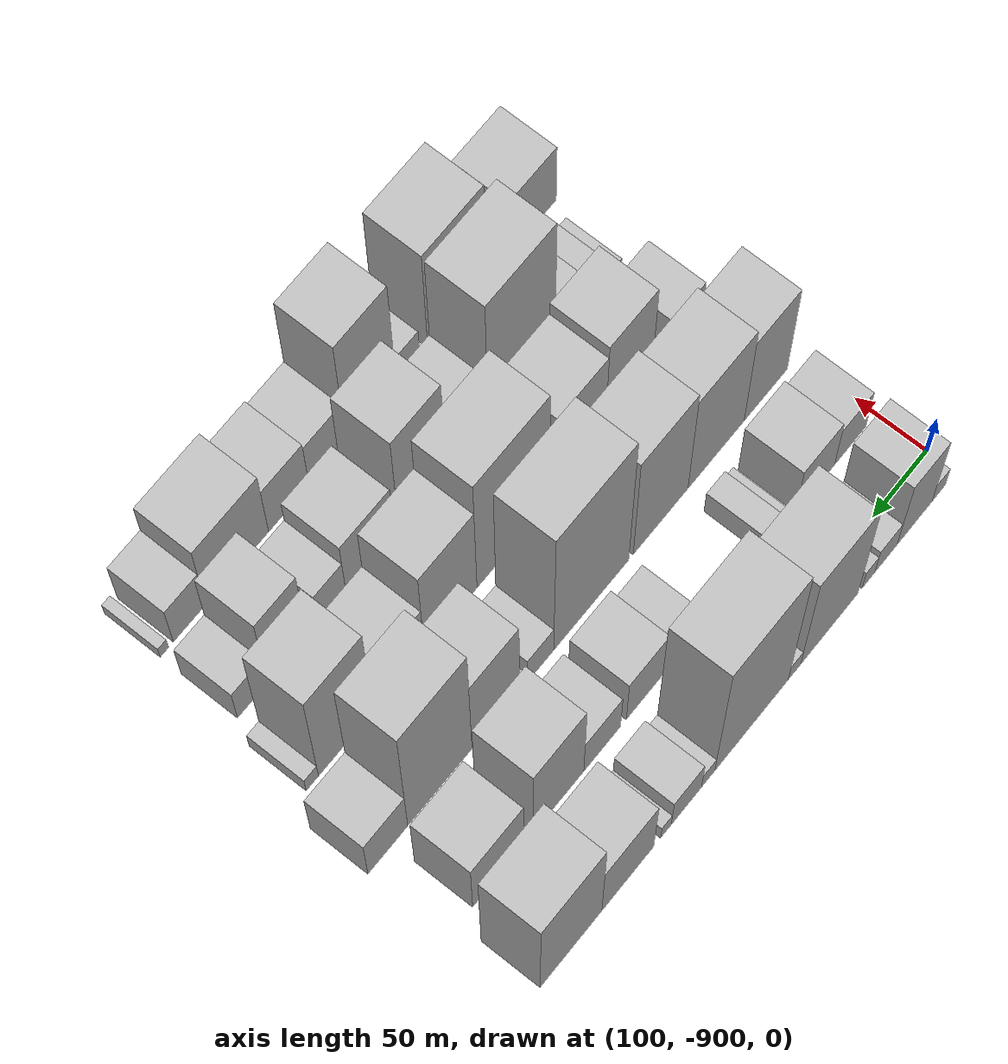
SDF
<sdf version="1.6">
 <world name="default">
  <model name="building_1">
   <static>1</static>
   <pose>100.0000 -883.7648 0 0.000000 0.000000 0.000000</pose>
   <link name="link">
    <pose>0 0 13.50 0 0 0</pose>
    <collision name="collision"><geometry><box><size>40.0000 12.4704 27.0000</size></box></geometry></collision>
    <visual name="visual">
     <cast_shadows>0</cast_shadows>
     <geometry><box><size>40.0000 12.4704 27.0000</size></box></geometry>
     <material>
      <script>
       <uri>model://HANNAS_wall/materials/scripts</uri>
       <uri>model://HANNAS_wall/materials/textures</uri>
       <name>vrc/HANNAS_wall</name>
      </script>
     </material>
    </visual>
   </link>
  </model>
  <model name="building_2">
   <static>1</static>
   <pose>100.0000 -861.3541 0 0.000000 0.000000 0.000000</pose>
   <link name="link">
    <pose>0 0 48.00 0 0 0</pose>
    <collision name="collision"><geometry><box><size>40.0000 32.3509 96.0000</size></box></geometry></collision>
    <visual name="visual">
     <cast_shadows>0</cast_shadows>
     <geometry><box><size>40.0000 32.3509 96.0000</size></box></geometry>
     <material>
      <script>
       <uri>model://HANNAS_wall/materials/scripts</uri>
       <uri>model://HANNAS_wall/materials/textures</uri>
       <name>vrc/HANNAS_wall</name>
      </script>
     </material>
    </visual>
   </link>
  </model>
  <model name="building_3">
   <static>1</static>
   <pose>100.0000 -835.0464 0 0.000000 0.000000 0.000000</pose>
   <link name="link">
    <pose>0 0 18.00 0 0 0</pose>
    <collision name="collision"><geometry><box><size>40.0000 20.2645 36.0000</size></box></geometry></collision>
    <visual name="visual">
     <cast_shadows>0</cast_shadows>
     <geometry><box><size>40.0000 20.2645 36.0000</size></box></geometry>
     <material>
      <script>
       <uri>model://HANNAS_wall/materials/scripts</uri>
       <uri>model://HANNAS_wall/materials/textures</uri>
       <name>vrc/HANNAS_wall</name>
      </script>
     </material>
    </visual>
   </link>
  </model>
  <model name="building_4">
   <static>1</static>
   <pose>100.0000 -819.1044 0 0.000000 0.000000 0.000000</pose>
   <link name="link">
    <pose>0 0 13.50 0 0 0</pose>
    <collision name="collision"><geometry><box><size>40.0000 11.6194 27.0000</size></box></geometry></collision>
    <visual name="visual">
     <cast_shadows>0</cast_shadows>
     <geometry><box><size>40.0000 11.6194 27.0000</size></box></geometry>
     <material>
      <script>
       <uri>model://HANNAS_wall/materials/scripts</uri>
       <uri>model://HANNAS_wall/materials/textures</uri>
       <name>vrc/HANNAS_wall</name>
      </script>
     </material>
    </visual>
   </link>
  </model>
  <model name="building_5">
   <static>1</static>
   <pose>100.0000 -783.4198 0 0.000000 0.000000 0.000000</pose>
   <link name="link">
    <pose>0 0 70.50 0 0 0</pose>
    <collision name="collision"><geometry><box><size>40.0000 51.7498 141.0000</size></box></geometry></collision>
    <visual name="visual">
     <cast_shadows>0</cast_shadows>
     <geometry><box><size>40.0000 51.7498 141.0000</size></box></geometry>
     <material>
      <script>
       <uri>model://HANNAS_wall/materials/scripts</uri>
       <uri>model://HANNAS_wall/materials/textures</uri>
       <name>vrc/HANNAS_wall</name>
      </script>
     </material>
    </visual>
   </link>
  </model>
  <model name="building_6">
   <static>1</static>
   <pose>100.0000 -752.0764 0 0.000000 0.000000 0.000000</pose>
   <link name="link">
    <pose>0 0 12.00 0 0 0</pose>
    <collision name="collision"><geometry><box><size>40.0000 10.9372 24.0000</size></box></geometry></collision>
    <visual name="visual">
     <cast_shadows>0</cast_shadows>
     <geometry><box><size>40.0000 10.9372 24.0000</size></box></geometry>
     <material>
      <script>
       <uri>model://HANNAS_wall/materials/scripts</uri>
       <uri>model://HANNAS_wall/materials/textures</uri>
       <name>vrc/HANNAS_wall</name>
      </script>
     </material>
    </visual>
   </link>
  </model>
  <model name="building_7">
   <static>1</static>
   <pose>100.0000 -713.8888 0 0.000000 0.000000 0.000000</pose>
   <link name="link">
    <pose>0 0 91.50 0 0 0</pose>
    <collision name="collision"><geometry><box><size>40.0000 65.4380 183.0000</size></box></geometry></collision>
    <visual name="visual">
     <cast_shadows>0</cast_shadows>
     <geometry><box><size>40.0000 65.4380 183.0000</size></box></geometry>
     <material>
      <script>
       <uri>model://HANNAS_wall/materials/scripts</uri>
       <uri>model://HANNAS_wall/materials/textures</uri>
       <name>vrc/HANNAS_wall</name>
      </script>
     </material>
    </visual>
   </link>
  </model>
  <model name="building_8">
   <static>1</static>
   <pose>100.0000 -675.3168 0 0.000000 0.000000 0.000000</pose>
   <link name="link">
    <pose>0 0 12.00 0 0 0</pose>
    <collision name="collision"><geometry><box><size>40.0000 11.7061 24.0000</size></box></geometry></collision>
    <visual name="visual">
     <cast_shadows>0</cast_shadows>
     <geometry><box><size>40.0000 11.7061 24.0000</size></box></geometry>
     <material>
      <script>
       <uri>model://HANNAS_wall/materials/scripts</uri>
       <uri>model://HANNAS_wall/materials/textures</uri>
       <name>vrc/HANNAS_wall</name>
      </script>
     </material>
    </visual>
   </link>
  </model>
  <model name="building_9">
   <static>1</static>
   <pose>100.0000 -656.2395 0 0.000000 0.000000 0.000000</pose>
   <link name="link">
    <pose>0 0 22.50 0 0 0</pose>
    <collision name="collision"><geometry><box><size>40.0000 26.4486 45.0000</size></box></geometry></collision>
    <visual name="visual">
     <cast_shadows>0</cast_shadows>
     <geometry><box><size>40.0000 26.4486 45.0000</size></box></geometry>
     <material>
      <script>
       <uri>model://HANNAS_wall/materials/scripts</uri>
       <uri>model://HANNAS_wall/materials/textures</uri>
       <name>vrc/HANNAS_wall</name>
      </script>
     </material>
    </visual>
   </link>
  </model>
  <model name="building_10">
   <static>1</static>
   <pose>100.0000 -638.4105 0 0.000000 0.000000 0.000000</pose>
   <link name="link">
    <pose>0 0 10.50 0 0 0</pose>
    <collision name="collision"><geometry><box><size>40.0000 9.2094 21.0000</size></box></geometry></collision>
    <visual name="visual">
     <cast_shadows>0</cast_shadows>
     <geometry><box><size>40.0000 9.2094 21.0000</size></box></geometry>
     <material>
      <script>
       <uri>model://HANNAS_wall/materials/scripts</uri>
       <uri>model://HANNAS_wall/materials/textures</uri>
       <name>vrc/HANNAS_wall</name>
      </script>
     </material>
    </visual>
   </link>
  </model>
  <model name="building_11">
   <static>1</static>
   <pose>100.0000 -605.3665 0 0.000000 0.000000 0.000000</pose>
   <link name="link">
    <pose>0 0 42.00 0 0 0</pose>
    <collision name="collision"><geometry><box><size>40.0000 44.8785 84.0000</size></box></geometry></collision>
    <visual name="visual">
     <cast_shadows>0</cast_shadows>
     <geometry><box><size>40.0000 44.8785 84.0000</size></box></geometry>
     <material>
      <script>
       <uri>model://HANNAS_wall/materials/scripts</uri>
       <uri>model://HANNAS_wall/materials/textures</uri>
       <name>vrc/HANNAS_wall</name>
      </script>
     </material>
    </visual>
   </link>
  </model>
  <model name="building_12">
   <static>1</static>
   <pose>100.0000 -556.5885 0 0.000000 0.000000 0.000000</pose>
   <link name="link">
    <pose>0 0 67.50 0 0 0</pose>
    <collision name="collision"><geometry><box><size>40.0000 52.6775 135.0000</size></box></geometry></collision>
    <visual name="visual">
     <cast_shadows>0</cast_shadows>
     <geometry><box><size>40.0000 52.6775 135.0000</size></box></geometry>
     <material>
      <script>
       <uri>model://HANNAS_wall/materials/scripts</uri>
       <uri>model://HANNAS_wall/materials/textures</uri>
       <name>vrc/HANNAS_wall</name>
      </script>
     </material>
    </visual>
   </link>
  </model>
  <model name="building_55">
   <static>1</static>
   <pose>155.0000 -875.5173 0 0.000000 0.000000 0.000000</pose>
   <link name="link">
    <pose>0 0 27.00 0 0 0</pose>
    <collision name="collision"><geometry><box><size>40.0000 28.9655 54.0000</size></box></geometry></collision>
    <visual name="visual">
     <cast_shadows>0</cast_shadows>
     <geometry><box><size>40.0000 28.9655 54.0000</size></box></geometry>
     <material>
      <script>
       <uri>model://HANNAS_wall/materials/scripts</uri>
       <uri>model://HANNAS_wall/materials/textures</uri>
       <name>vrc/HANNAS_wall</name>
      </script>
     </material>
    </visual>
   </link>
  </model>
  <model name="building_56">
   <static>1</static>
   <pose>155.0000 -843.3119 0 0.000000 0.000000 0.000000</pose>
   <link name="link">
    <pose>0 0 33.00 0 0 0</pose>
    <collision name="collision"><geometry><box><size>40.0000 35.4452 66.0000</size></box></geometry></collision>
    <visual name="visual">
     <cast_shadows>0</cast_shadows>
     <geometry><box><size>40.0000 35.4452 66.0000</size></box></geometry>
     <material>
      <script>
       <uri>model://HANNAS_wall/materials/scripts</uri>
       <uri>model://HANNAS_wall/materials/textures</uri>
       <name>vrc/HANNAS_wall</name>
      </script>
     </material>
    </visual>
   </link>
  </model>
  <model name="building_57">
   <static>1</static>
   <pose>155.0000 -815.4259 0 0.000000 0.000000 0.000000</pose>
   <link name="link">
    <pose>0 0 9.00 0 0 0</pose>
    <collision name="collision"><geometry><box><size>40.0000 8.3268 18.0000</size></box></geometry></collision>
    <visual name="visual">
     <cast_shadows>0</cast_shadows>
     <geometry><box><size>40.0000 8.3268 18.0000</size></box></geometry>
     <material>
      <script>
       <uri>model://HANNAS_wall/materials/scripts</uri>
       <uri>model://HANNAS_wall/materials/textures</uri>
       <name>vrc/HANNAS_wall</name>
      </script>
     </material>
    </visual>
   </link>
  </model>
  <model name="building_58">
   <static>1</static>
   <pose>155.0000 -802.9785 0 0.000000 0.000000 0.000000</pose>
   <link name="link">
    <pose>0 0 15.00 0 0 0</pose>
    <collision name="collision"><geometry><box><size>40.0000 16.5681 30.0000</size></box></geometry></collision>
    <visual name="visual">
     <cast_shadows>0</cast_shadows>
     <geometry><box><size>40.0000 16.5681 30.0000</size></box></geometry>
     <material>
      <script>
       <uri>model://HANNAS_wall/materials/scripts</uri>
       <uri>model://HANNAS_wall/materials/textures</uri>
       <name>vrc/HANNAS_wall</name>
      </script>
     </material>
    </visual>
   </link>
  </model>
  <model name="building_59">
   <static>1</static>
   <pose>155.0000 -725.8095 0 0.000000 0.000000 0.000000</pose>
   <link name="link">
    <pose>0 0 21.00 0 0 0</pose>
    <collision name="collision"><geometry><box><size>40.0000 23.2567 42.0000</size></box></geometry></collision>
    <visual name="visual">
     <cast_shadows>0</cast_shadows>
     <geometry><box><size>40.0000 23.2567 42.0000</size></box></geometry>
     <material>
      <script>
       <uri>model://HANNAS_wall/materials/scripts</uri>
       <uri>model://HANNAS_wall/materials/textures</uri>
       <name>vrc/HANNAS_wall</name>
      </script>
     </material>
    </visual>
   </link>
  </model>
  <model name="building_60">
   <static>1</static>
   <pose>155.0000 -691.6443 0 0.000000 0.000000 0.000000</pose>
   <link name="link">
    <pose>0 0 33.00 0 0 0</pose>
    <collision name="collision"><geometry><box><size>40.0000 35.0736 66.0000</size></box></geometry></collision>
    <visual name="visual">
     <cast_shadows>0</cast_shadows>
     <geometry><box><size>40.0000 35.0736 66.0000</size></box></geometry>
     <material>
      <script>
       <uri>model://HANNAS_wall/materials/scripts</uri>
       <uri>model://HANNAS_wall/materials/textures</uri>
       <name>vrc/HANNAS_wall</name>
      </script>
     </material>
    </visual>
   </link>
  </model>
  <model name="building_61">
   <static>1</static>
   <pose>155.0000 -653.0417 0 0.000000 0.000000 0.000000</pose>
   <link name="link">
    <pose>0 0 27.00 0 0 0</pose>
    <collision name="collision"><geometry><box><size>40.0000 32.1316 54.0000</size></box></geometry></collision>
    <visual name="visual">
     <cast_shadows>0</cast_shadows>
     <geometry><box><size>40.0000 32.1316 54.0000</size></box></geometry>
     <material>
      <script>
       <uri>model://HANNAS_wall/materials/scripts</uri>
       <uri>model://HANNAS_wall/materials/textures</uri>
       <name>vrc/HANNAS_wall</name>
      </script>
     </material>
    </visual>
   </link>
  </model>
  <model name="building_62">
   <static>1</static>
   <pose>155.0000 -615.1147 0 0.000000 0.000000 0.000000</pose>
   <link name="link">
    <pose>0 0 58.50 0 0 0</pose>
    <collision name="collision"><geometry><box><size>40.0000 43.7225 117.0000</size></box></geometry></collision>
    <visual name="visual">
     <cast_shadows>0</cast_shadows>
     <geometry><box><size>40.0000 43.7225 117.0000</size></box></geometry>
     <material>
      <script>
       <uri>model://HANNAS_wall/materials/scripts</uri>
       <uri>model://HANNAS_wall/materials/textures</uri>
       <name>vrc/HANNAS_wall</name>
      </script>
     </material>
    </visual>
   </link>
  </model>
  <model name="building_63">
   <static>1</static>
   <pose>155.0000 -563.4851 0 0.000000 0.000000 0.000000</pose>
   <link name="link">
    <pose>0 0 40.50 0 0 0</pose>
    <collision name="collision"><geometry><box><size>40.0000 43.5367 81.0000</size></box></geometry></collision>
    <visual name="visual">
     <cast_shadows>0</cast_shadows>
     <geometry><box><size>40.0000 43.5367 81.0000</size></box></geometry>
     <material>
      <script>
       <uri>model://HANNAS_wall/materials/scripts</uri>
       <uri>model://HANNAS_wall/materials/textures</uri>
       <name>vrc/HANNAS_wall</name>
      </script>
     </material>
    </visual>
   </link>
  </model>
  <model name="building_104">
   <static>1</static>
   <pose>210.0000 -870.1935 0 0.000000 0.000000 0.000000</pose>
   <link name="link">
    <pose>0 0 58.50 0 0 0</pose>
    <collision name="collision"><geometry><box><size>40.0000 39.6129 117.0000</size></box></geometry></collision>
    <visual name="visual">
     <cast_shadows>0</cast_shadows>
     <geometry><box><size>40.0000 39.6129 117.0000</size></box></geometry>
     <material>
      <script>
       <uri>model://HANNAS_wall/materials/scripts</uri>
       <uri>model://HANNAS_wall/materials/textures</uri>
       <name>vrc/HANNAS_wall</name>
      </script>
     </material>
    </visual>
   </link>
  </model>
  <model name="building_105">
   <static>1</static>
   <pose>210.0000 -824.9096 0 0.000000 0.000000 0.000000</pose>
   <link name="link">
    <pose>0 0 67.50 0 0 0</pose>
    <collision name="collision"><geometry><box><size>40.0000 50.9550 135.0000</size></box></geometry></collision>
    <visual name="visual">
     <cast_shadows>0</cast_shadows>
     <geometry><box><size>40.0000 50.9550 135.0000</size></box></geometry>
     <material>
      <script>
       <uri>model://HANNAS_wall/materials/scripts</uri>
       <uri>model://HANNAS_wall/materials/textures</uri>
       <name>vrc/HANNAS_wall</name>
      </script>
     </material>
    </visual>
   </link>
  </model>
  <model name="building_106">
   <static>1</static>
   <pose>210.0000 -774.9024 0 0.000000 0.000000 0.000000</pose>
   <link name="link">
    <pose>0 0 73.50 0 0 0</pose>
    <collision name="collision"><geometry><box><size>40.0000 49.0593 147.0000</size></box></geometry></collision>
    <visual name="visual">
     <cast_shadows>0</cast_shadows>
     <geometry><box><size>40.0000 49.0593 147.0000</size></box></geometry>
     <material>
      <script>
       <uri>model://HANNAS_wall/materials/scripts</uri>
       <uri>model://HANNAS_wall/materials/textures</uri>
       <name>vrc/HANNAS_wall</name>
      </script>
     </material>
    </visual>
   </link>
  </model>
  <model name="building_107">
   <static>1</static>
   <pose>210.0000 -713.2337 0 0.000000 0.000000 0.000000</pose>
   <link name="link">
    <pose>0 0 94.50 0 0 0</pose>
    <collision name="collision"><geometry><box><size>40.0000 66.2782 189.0000</size></box></geometry></collision>
    <visual name="visual">
     <cast_shadows>0</cast_shadows>
     <geometry><box><size>40.0000 66.2782 189.0000</size></box></geometry>
     <material>
      <script>
       <uri>model://HANNAS_wall/materials/scripts</uri>
       <uri>model://HANNAS_wall/materials/textures</uri>
       <name>vrc/HANNAS_wall</name>
      </script>
     </material>
    </visual>
   </link>
  </model>
  <model name="building_108">
   <static>1</static>
   <pose>210.0000 -668.7282 0 0.000000 0.000000 0.000000</pose>
   <link name="link">
    <pose>0 0 19.50 0 0 0</pose>
    <collision name="collision"><geometry><box><size>40.0000 22.7329 39.0000</size></box></geometry></collision>
    <visual name="visual">
     <cast_shadows>0</cast_shadows>
     <geometry><box><size>40.0000 22.7329 39.0000</size></box></geometry>
     <material>
      <script>
       <uri>model://HANNAS_wall/materials/scripts</uri>
       <uri>model://HANNAS_wall/materials/textures</uri>
       <name>vrc/HANNAS_wall</name>
      </script>
     </material>
    </visual>
   </link>
  </model>
  <model name="building_109">
   <static>1</static>
   <pose>210.0000 -653.8431 0 0.000000 0.000000 0.000000</pose>
   <link name="link">
    <pose>0 0 7.50 0 0 0</pose>
    <collision name="collision"><geometry><box><size>40.0000 7.0373 15.0000</size></box></geometry></collision>
    <visual name="visual">
     <cast_shadows>0</cast_shadows>
     <geometry><box><size>40.0000 7.0373 15.0000</size></box></geometry>
     <material>
      <script>
       <uri>model://HANNAS_wall/materials/scripts</uri>
       <uri>model://HANNAS_wall/materials/textures</uri>
       <name>vrc/HANNAS_wall</name>
      </script>
     </material>
    </visual>
   </link>
  </model>
  <model name="building_110">
   <static>1</static>
   <pose>210.0000 -629.8048 0 0.000000 0.000000 0.000000</pose>
   <link name="link">
    <pose>0 0 58.50 0 0 0</pose>
    <collision name="collision"><geometry><box><size>40.0000 41.0392 117.0000</size></box></geometry></collision>
    <visual name="visual">
     <cast_shadows>0</cast_shadows>
     <geometry><box><size>40.0000 41.0392 117.0000</size></box></geometry>
     <material>
      <script>
       <uri>model://HANNAS_wall/materials/scripts</uri>
       <uri>model://HANNAS_wall/materials/textures</uri>
       <name>vrc/HANNAS_wall</name>
      </script>
     </material>
    </visual>
   </link>
  </model>
  <model name="building_111">
   <static>1</static>
   <pose>210.0000 -581.8648 0 0.000000 0.000000 0.000000</pose>
   <link name="link">
    <pose>0 0 87.00 0 0 0</pose>
    <collision name="collision"><geometry><box><size>40.0000 54.8408 174.0000</size></box></geometry></collision>
    <visual name="visual">
     <cast_shadows>0</cast_shadows>
     <geometry><box><size>40.0000 54.8408 174.0000</size></box></geometry>
     <material>
      <script>
       <uri>model://HANNAS_wall/materials/scripts</uri>
       <uri>model://HANNAS_wall/materials/textures</uri>
       <name>vrc/HANNAS_wall</name>
      </script>
     </material>
    </visual>
   </link>
  </model>
  <model name="building_112">
   <static>1</static>
   <pose>210.0000 -537.6299 0 0.000000 0.000000 0.000000</pose>
   <link name="link">
    <pose>0 0 30.00 0 0 0</pose>
    <collision name="collision"><geometry><box><size>40.0000 33.6290 60.0000</size></box></geometry></collision>
    <visual name="visual">
     <cast_shadows>0</cast_shadows>
     <geometry><box><size>40.0000 33.6290 60.0000</size></box></geometry>
     <material>
      <script>
       <uri>model://HANNAS_wall/materials/scripts</uri>
       <uri>model://HANNAS_wall/materials/textures</uri>
       <name>vrc/HANNAS_wall</name>
      </script>
     </material>
    </visual>
   </link>
  </model>
  <model name="building_156">
   <static>1</static>
   <pose>265.0000 -868.2908 0 0.000000 0.000000 0.000000</pose>
   <link name="link">
    <pose>0 0 28.50 0 0 0</pose>
    <collision name="collision"><geometry><box><size>40.0000 29.4184 57.0000</size></box></geometry></collision>
    <visual name="visual">
     <cast_shadows>0</cast_shadows>
     <geometry><box><size>40.0000 29.4184 57.0000</size></box></geometry>
     <material>
      <script>
       <uri>model://HANNAS_wall/materials/scripts</uri>
       <uri>model://HANNAS_wall/materials/textures</uri>
       <name>vrc/HANNAS_wall</name>
      </script>
     </material>
    </visual>
   </link>
  </model>
  <model name="building_157">
   <static>1</static>
   <pose>265.0000 -845.6279 0 0.000000 0.000000 0.000000</pose>
   <link name="link">
    <pose>0 0 9.00 0 0 0</pose>
    <collision name="collision"><geometry><box><size>40.0000 7.9073 18.0000</size></box></geometry></collision>
    <visual name="visual">
     <cast_shadows>0</cast_shadows>
     <geometry><box><size>40.0000 7.9073 18.0000</size></box></geometry>
     <material>
      <script>
       <uri>model://HANNAS_wall/materials/scripts</uri>
       <uri>model://HANNAS_wall/materials/textures</uri>
       <name>vrc/HANNAS_wall</name>
      </script>
     </material>
    </visual>
   </link>
  </model>
  <model name="building_158">
   <static>1</static>
   <pose>265.0000 -815.8304 0 0.000000 0.000000 0.000000</pose>
   <link name="link">
    <pose>0 0 67.50 0 0 0</pose>
    <collision name="collision"><geometry><box><size>40.0000 41.6878 135.0000</size></box></geometry></collision>
    <visual name="visual">
     <cast_shadows>0</cast_shadows>
     <geometry><box><size>40.0000 41.6878 135.0000</size></box></geometry>
     <material>
      <script>
       <uri>model://HANNAS_wall/materials/scripts</uri>
       <uri>model://HANNAS_wall/materials/textures</uri>
       <name>vrc/HANNAS_wall</name>
      </script>
     </material>
    </visual>
   </link>
  </model>
  <model name="building_159">
   <static>1</static>
   <pose>265.0000 -773.1624 0 0.000000 0.000000 0.000000</pose>
   <link name="link">
    <pose>0 0 60.00 0 0 0</pose>
    <collision name="collision"><geometry><box><size>40.0000 43.6480 120.0000</size></box></geometry></collision>
    <visual name="visual">
     <cast_shadows>0</cast_shadows>
     <geometry><box><size>40.0000 43.6480 120.0000</size></box></geometry>
     <material>
      <script>
       <uri>model://HANNAS_wall/materials/scripts</uri>
       <uri>model://HANNAS_wall/materials/textures</uri>
       <name>vrc/HANNAS_wall</name>
      </script>
     </material>
    </visual>
   </link>
  </model>
  <model name="building_160">
   <static>1</static>
   <pose>265.0000 -748.2103 0 0.000000 0.000000 0.000000</pose>
   <link name="link">
    <pose>0 0 7.50 0 0 0</pose>
    <collision name="collision"><geometry><box><size>40.0000 6.2563 15.0000</size></box></geometry></collision>
    <visual name="visual">
     <cast_shadows>0</cast_shadows>
     <geometry><box><size>40.0000 6.2563 15.0000</size></box></geometry>
     <material>
      <script>
       <uri>model://HANNAS_wall/materials/scripts</uri>
       <uri>model://HANNAS_wall/materials/textures</uri>
       <name>vrc/HANNAS_wall</name>
      </script>
     </material>
    </visual>
   </link>
  </model>
  <model name="building_161">
   <static>1</static>
   <pose>265.0000 -713.4798 0 0.000000 0.000000 0.000000</pose>
   <link name="link">
    <pose>0 0 84.00 0 0 0</pose>
    <collision name="collision"><geometry><box><size>40.0000 63.2047 168.0000</size></box></geometry></collision>
    <visual name="visual">
     <cast_shadows>0</cast_shadows>
     <geometry><box><size>40.0000 63.2047 168.0000</size></box></geometry>
     <material>
      <script>
       <uri>model://HANNAS_wall/materials/scripts</uri>
       <uri>model://HANNAS_wall/materials/textures</uri>
       <name>vrc/HANNAS_wall</name>
      </script>
     </material>
    </visual>
   </link>
  </model>
  <model name="building_162">
   <static>1</static>
   <pose>265.0000 -658.9999 0 0.000000 0.000000 0.000000</pose>
   <link name="link">
    <pose>0 0 63.00 0 0 0</pose>
    <collision name="collision"><geometry><box><size>40.0000 45.7551 126.0000</size></box></geometry></collision>
    <visual name="visual">
     <cast_shadows>0</cast_shadows>
     <geometry><box><size>40.0000 45.7551 126.0000</size></box></geometry>
     <material>
      <script>
       <uri>model://HANNAS_wall/materials/scripts</uri>
       <uri>model://HANNAS_wall/materials/textures</uri>
       <name>vrc/HANNAS_wall</name>
      </script>
     </material>
    </visual>
   </link>
  </model>
  <model name="building_163">
   <static>1</static>
   <pose>265.0000 -615.6955 0 0.000000 0.000000 0.000000</pose>
   <link name="link">
    <pose>0 0 36.00 0 0 0</pose>
    <collision name="collision"><geometry><box><size>40.0000 40.8537 72.0000</size></box></geometry></collision>
    <visual name="visual">
     <cast_shadows>0</cast_shadows>
     <geometry><box><size>40.0000 40.8537 72.0000</size></box></geometry>
     <material>
      <script>
       <uri>model://HANNAS_wall/materials/scripts</uri>
       <uri>model://HANNAS_wall/materials/textures</uri>
       <name>vrc/HANNAS_wall</name>
      </script>
     </material>
    </visual>
   </link>
  </model>
  <model name="building_164">
   <static>1</static>
   <pose>265.0000 -569.0585 0 0.000000 0.000000 0.000000</pose>
   <link name="link">
    <pose>0 0 70.50 0 0 0</pose>
    <collision name="collision"><geometry><box><size>40.0000 46.4203 141.0000</size></box></geometry></collision>
    <visual name="visual">
     <cast_shadows>0</cast_shadows>
     <geometry><box><size>40.0000 46.4203 141.0000</size></box></geometry>
     <material>
      <script>
       <uri>model://HANNAS_wall/materials/scripts</uri>
       <uri>model://HANNAS_wall/materials/textures</uri>
       <name>vrc/HANNAS_wall</name>
      </script>
     </material>
    </visual>
   </link>
  </model>
  <model name="building_165">
   <static>1</static>
   <pose>265.0000 -540.6428 0 0.000000 0.000000 0.000000</pose>
   <link name="link">
    <pose>0 0 10.50 0 0 0</pose>
    <collision name="collision"><geometry><box><size>40.0000 10.4110 21.0000</size></box></geometry></collision>
    <visual name="visual">
     <cast_shadows>0</cast_shadows>
     <geometry><box><size>40.0000 10.4110 21.0000</size></box></geometry>
     <material>
      <script>
       <uri>model://HANNAS_wall/materials/scripts</uri>
       <uri>model://HANNAS_wall/materials/textures</uri>
       <name>vrc/HANNAS_wall</name>
      </script>
     </material>
    </visual>
   </link>
  </model>
  <model name="building_206">
   <static>1</static>
   <pose>320.0000 -876.3824 0 0.000000 0.000000 0.000000</pose>
   <link name="link">
    <pose>0 0 7.50 0 0 0</pose>
    <collision name="collision"><geometry><box><size>40.0000 7.2353 15.0000</size></box></geometry></collision>
    <visual name="visual">
     <cast_shadows>0</cast_shadows>
     <geometry><box><size>40.0000 7.2353 15.0000</size></box></geometry>
     <material>
      <script>
       <uri>model://HANNAS_wall/materials/scripts</uri>
       <uri>model://HANNAS_wall/materials/textures</uri>
       <name>vrc/HANNAS_wall</name>
      </script>
     </material>
    </visual>
   </link>
  </model>
  <model name="building_207">
   <static>1</static>
   <pose>320.0000 -857.7135 0 0.000000 0.000000 0.000000</pose>
   <link name="link">
    <pose>0 0 18.00 0 0 0</pose>
    <collision name="collision"><geometry><box><size>40.0000 18.1024 36.0000</size></box></geometry></collision>
    <visual name="visual">
     <cast_shadows>0</cast_shadows>
     <geometry><box><size>40.0000 18.1024 36.0000</size></box></geometry>
     <material>
      <script>
       <uri>model://HANNAS_wall/materials/scripts</uri>
       <uri>model://HANNAS_wall/materials/textures</uri>
       <name>vrc/HANNAS_wall</name>
      </script>
     </material>
    </visual>
   </link>
  </model>
  <model name="building_208">
   <static>1</static>
   <pose>320.0000 -836.5728 0 0.000000 0.000000 0.000000</pose>
   <link name="link">
    <pose>0 0 22.50 0 0 0</pose>
    <collision name="collision"><geometry><box><size>40.0000 24.1791 45.0000</size></box></geometry></collision>
    <visual name="visual">
     <cast_shadows>0</cast_shadows>
     <geometry><box><size>40.0000 24.1791 45.0000</size></box></geometry>
     <material>
      <script>
       <uri>model://HANNAS_wall/materials/scripts</uri>
       <uri>model://HANNAS_wall/materials/textures</uri>
       <name>vrc/HANNAS_wall</name>
      </script>
     </material>
    </visual>
   </link>
  </model>
  <model name="building_209">
   <static>1</static>
   <pose>320.0000 -789.8288 0 0.000000 0.000000 0.000000</pose>
   <link name="link">
    <pose>0 0 87.00 0 0 0</pose>
    <collision name="collision"><geometry><box><size>40.0000 59.3088 174.0000</size></box></geometry></collision>
    <visual name="visual">
     <cast_shadows>0</cast_shadows>
     <geometry><box><size>40.0000 59.3088 174.0000</size></box></geometry>
     <material>
      <script>
       <uri>model://HANNAS_wall/materials/scripts</uri>
       <uri>model://HANNAS_wall/materials/textures</uri>
       <name>vrc/HANNAS_wall</name>
      </script>
     </material>
    </visual>
   </link>
  </model>
  <model name="building_210">
   <static>1</static>
   <pose>320.0000 -741.5971 0 0.000000 0.000000 0.000000</pose>
   <link name="link">
    <pose>0 0 36.00 0 0 0</pose>
    <collision name="collision"><geometry><box><size>40.0000 37.1547 72.0000</size></box></geometry></collision>
    <visual name="visual">
     <cast_shadows>0</cast_shadows>
     <geometry><box><size>40.0000 37.1547 72.0000</size></box></geometry>
     <material>
      <script>
       <uri>model://HANNAS_wall/materials/scripts</uri>
       <uri>model://HANNAS_wall/materials/textures</uri>
       <name>vrc/HANNAS_wall</name>
      </script>
     </material>
    </visual>
   </link>
  </model>
  <model name="building_211">
   <static>1</static>
   <pose>320.0000 -702.3172 0 0.000000 0.000000 0.000000</pose>
   <link name="link">
    <pose>0 0 69.00 0 0 0</pose>
    <collision name="collision"><geometry><box><size>40.0000 41.4053 138.0000</size></box></geometry></collision>
    <visual name="visual">
     <cast_shadows>0</cast_shadows>
     <geometry><box><size>40.0000 41.4053 138.0000</size></box></geometry>
     <material>
      <script>
       <uri>model://HANNAS_wall/materials/scripts</uri>
       <uri>model://HANNAS_wall/materials/textures</uri>
       <name>vrc/HANNAS_wall</name>
      </script>
     </material>
    </visual>
   </link>
  </model>
  <model name="building_212">
   <static>1</static>
   <pose>320.0000 -656.6233 0 0.000000 0.000000 0.000000</pose>
   <link name="link">
    <pose>0 0 37.50 0 0 0</pose>
    <collision name="collision"><geometry><box><size>40.0000 41.9824 75.0000</size></box></geometry></collision>
    <visual name="visual">
     <cast_shadows>0</cast_shadows>
     <geometry><box><size>40.0000 41.9824 75.0000</size></box></geometry>
     <material>
      <script>
       <uri>model://HANNAS_wall/materials/scripts</uri>
       <uri>model://HANNAS_wall/materials/textures</uri>
       <name>vrc/HANNAS_wall</name>
      </script>
     </material>
    </visual>
   </link>
  </model>
  <model name="building_213">
   <static>1</static>
   <pose>320.0000 -623.6018 0 0.000000 0.000000 0.000000</pose>
   <link name="link">
    <pose>0 0 24.00 0 0 0</pose>
    <collision name="collision"><geometry><box><size>40.0000 24.0606 48.0000</size></box></geometry></collision>
    <visual name="visual">
     <cast_shadows>0</cast_shadows>
     <geometry><box><size>40.0000 24.0606 48.0000</size></box></geometry>
     <material>
      <script>
       <uri>model://HANNAS_wall/materials/scripts</uri>
       <uri>model://HANNAS_wall/materials/textures</uri>
       <name>vrc/HANNAS_wall</name>
      </script>
     </material>
    </visual>
   </link>
  </model>
  <model name="building_214">
   <static>1</static>
   <pose>320.0000 -585.6541 0 0.000000 0.000000 0.000000</pose>
   <link name="link">
    <pose>0 0 52.50 0 0 0</pose>
    <collision name="collision"><geometry><box><size>40.0000 33.8347 105.0000</size></box></geometry></collision>
    <visual name="visual">
     <cast_shadows>0</cast_shadows>
     <geometry><box><size>40.0000 33.8347 105.0000</size></box></geometry>
     <material>
      <script>
       <uri>model://HANNAS_wall/materials/scripts</uri>
       <uri>model://HANNAS_wall/materials/textures</uri>
       <name>vrc/HANNAS_wall</name>
      </script>
     </material>
    </visual>
   </link>
  </model>
  <model name="building_215">
   <static>1</static>
   <pose>320.0000 -556.0959 0 0.000000 0.000000 0.000000</pose>
   <link name="link">
    <pose>0 0 22.50 0 0 0</pose>
    <collision name="collision"><geometry><box><size>40.0000 25.2817 45.0000</size></box></geometry></collision>
    <visual name="visual">
     <cast_shadows>0</cast_shadows>
     <geometry><box><size>40.0000 25.2817 45.0000</size></box></geometry>
     <material>
      <script>
       <uri>model://HANNAS_wall/materials/scripts</uri>
       <uri>model://HANNAS_wall/materials/textures</uri>
       <name>vrc/HANNAS_wall</name>
      </script>
     </material>
    </visual>
   </link>
  </model>
  <model name="building_259">
   <static>1</static>
   <pose>375.0000 -868.5792 0 0.000000 0.000000 0.000000</pose>
   <link name="link">
    <pose>0 0 36.00 0 0 0</pose>
    <collision name="collision"><geometry><box><size>40.0000 42.8416 72.0000</size></box></geometry></collision>
    <visual name="visual">
     <cast_shadows>0</cast_shadows>
     <geometry><box><size>40.0000 42.8416 72.0000</size></box></geometry>
     <material>
      <script>
       <uri>model://HANNAS_wall/materials/scripts</uri>
       <uri>model://HANNAS_wall/materials/textures</uri>
       <name>vrc/HANNAS_wall</name>
      </script>
     </material>
    </visual>
   </link>
  </model>
  <model name="building_260">
   <static>1</static>
   <pose>375.0000 -843.2786 0 0.000000 0.000000 0.000000</pose>
   <link name="link">
    <pose>0 0 9.00 0 0 0</pose>
    <collision name="collision"><geometry><box><size>40.0000 7.7595 18.0000</size></box></geometry></collision>
    <visual name="visual">
     <cast_shadows>0</cast_shadows>
     <geometry><box><size>40.0000 7.7595 18.0000</size></box></geometry>
     <material>
      <script>
       <uri>model://HANNAS_wall/materials/scripts</uri>
       <uri>model://HANNAS_wall/materials/textures</uri>
       <name>vrc/HANNAS_wall</name>
      </script>
     </material>
    </visual>
   </link>
  </model>
  <model name="building_261">
   <static>1</static>
   <pose>375.0000 -834.5866 0 0.000000 0.000000 0.000000</pose>
   <link name="link">
    <pose>0 0 10.50 0 0 0</pose>
    <collision name="collision"><geometry><box><size>40.0000 9.6244 21.0000</size></box></geometry></collision>
    <visual name="visual">
     <cast_shadows>0</cast_shadows>
     <geometry><box><size>40.0000 9.6244 21.0000</size></box></geometry>
     <material>
      <script>
       <uri>model://HANNAS_wall/materials/scripts</uri>
       <uri>model://HANNAS_wall/materials/textures</uri>
       <name>vrc/HANNAS_wall</name>
      </script>
     </material>
    </visual>
   </link>
  </model>
  <model name="building_262">
   <static>1</static>
   <pose>375.0000 -800.6245 0 0.000000 0.000000 0.000000</pose>
   <link name="link">
    <pose>0 0 66.00 0 0 0</pose>
    <collision name="collision"><geometry><box><size>40.0000 52.3000 132.0000</size></box></geometry></collision>
    <visual name="visual">
     <cast_shadows>0</cast_shadows>
     <geometry><box><size>40.0000 52.3000 132.0000</size></box></geometry>
     <material>
      <script>
       <uri>model://HANNAS_wall/materials/scripts</uri>
       <uri>model://HANNAS_wall/materials/textures</uri>
       <name>vrc/HANNAS_wall</name>
      </script>
     </material>
    </visual>
   </link>
  </model>
  <model name="building_263">
   <static>1</static>
   <pose>375.0000 -757.0307 0 0.000000 0.000000 0.000000</pose>
   <link name="link">
    <pose>0 0 19.50 0 0 0</pose>
    <collision name="collision"><geometry><box><size>40.0000 20.8876 39.0000</size></box></geometry></collision>
    <visual name="visual">
     <cast_shadows>0</cast_shadows>
     <geometry><box><size>40.0000 20.8876 39.0000</size></box></geometry>
     <material>
      <script>
       <uri>model://HANNAS_wall/materials/scripts</uri>
       <uri>model://HANNAS_wall/materials/textures</uri>
       <name>vrc/HANNAS_wall</name>
      </script>
     </material>
    </visual>
   </link>
  </model>
  <model name="building_264">
   <static>1</static>
   <pose>375.0000 -724.5255 0 0.000000 0.000000 0.000000</pose>
   <link name="link">
    <pose>0 0 72.00 0 0 0</pose>
    <collision name="collision"><geometry><box><size>40.0000 44.1227 144.0000</size></box></geometry></collision>
    <visual name="visual">
     <cast_shadows>0</cast_shadows>
     <geometry><box><size>40.0000 44.1227 144.0000</size></box></geometry>
     <material>
      <script>
       <uri>model://HANNAS_wall/materials/scripts</uri>
       <uri>model://HANNAS_wall/materials/textures</uri>
       <name>vrc/HANNAS_wall</name>
      </script>
     </material>
    </visual>
   </link>
  </model>
  <model name="building_265">
   <static>1</static>
   <pose>375.0000 -686.3757 0 0.000000 0.000000 0.000000</pose>
   <link name="link">
    <pose>0 0 30.00 0 0 0</pose>
    <collision name="collision"><geometry><box><size>40.0000 32.1769 60.0000</size></box></geometry></collision>
    <visual name="visual">
     <cast_shadows>0</cast_shadows>
     <geometry><box><size>40.0000 32.1769 60.0000</size></box></geometry>
     <material>
      <script>
       <uri>model://HANNAS_wall/materials/scripts</uri>
       <uri>model://HANNAS_wall/materials/textures</uri>
       <name>vrc/HANNAS_wall</name>
      </script>
     </material>
    </visual>
   </link>
  </model>
  <model name="building_266">
   <static>1</static>
   <pose>375.0000 -652.8877 0 0.000000 0.000000 0.000000</pose>
   <link name="link">
    <pose>0 0 33.00 0 0 0</pose>
    <collision name="collision"><geometry><box><size>40.0000 34.7992 66.0000</size></box></geometry></collision>
    <visual name="visual">
     <cast_shadows>0</cast_shadows>
     <geometry><box><size>40.0000 34.7992 66.0000</size></box></geometry>
     <material>
      <script>
       <uri>model://HANNAS_wall/materials/scripts</uri>
       <uri>model://HANNAS_wall/materials/textures</uri>
       <name>vrc/HANNAS_wall</name>
      </script>
     </material>
    </visual>
   </link>
  </model>
  <model name="building_267">
   <static>1</static>
   <pose>375.0000 -608.6832 0 0.000000 0.000000 0.000000</pose>
   <link name="link">
    <pose>0 0 45.00 0 0 0</pose>
    <collision name="collision"><geometry><box><size>40.0000 53.6097 90.0000</size></box></geometry></collision>
    <visual name="visual">
     <cast_shadows>0</cast_shadows>
     <geometry><box><size>40.0000 53.6097 90.0000</size></box></geometry>
     <material>
      <script>
       <uri>model://HANNAS_wall/materials/scripts</uri>
       <uri>model://HANNAS_wall/materials/textures</uri>
       <name>vrc/HANNAS_wall</name>
      </script>
     </material>
    </visual>
   </link>
  </model>
  <model name="building_268">
   <static>1</static>
   <pose>375.0000 -568.2032 0 0.000000 0.000000 0.000000</pose>
   <link name="link">
    <pose>0 0 27.00 0 0 0</pose>
    <collision name="collision"><geometry><box><size>40.0000 27.3503 54.0000</size></box></geometry></collision>
    <visual name="visual">
     <cast_shadows>0</cast_shadows>
     <geometry><box><size>40.0000 27.3503 54.0000</size></box></geometry>
     <material>
      <script>
       <uri>model://HANNAS_wall/materials/scripts</uri>
       <uri>model://HANNAS_wall/materials/textures</uri>
       <name>vrc/HANNAS_wall</name>
      </script>
     </material>
    </visual>
   </link>
  </model>
  <model name="building_269">
   <static>1</static>
   <pose>375.0000 -547.0101 0 0.000000 0.000000 0.000000</pose>
   <link name="link">
    <pose>0 0 7.50 0 0 0</pose>
    <collision name="collision"><geometry><box><size>40.0000 7.0359 15.0000</size></box></geometry></collision>
    <visual name="visual">
     <cast_shadows>0</cast_shadows>
     <geometry><box><size>40.0000 7.0359 15.0000</size></box></geometry>
     <material>
      <script>
       <uri>model://HANNAS_wall/materials/scripts</uri>
       <uri>model://HANNAS_wall/materials/textures</uri>
       <name>vrc/HANNAS_wall</name>
      </script>
     </material>
    </visual>
   </link>
  </model>
 </world>
</sdf>
